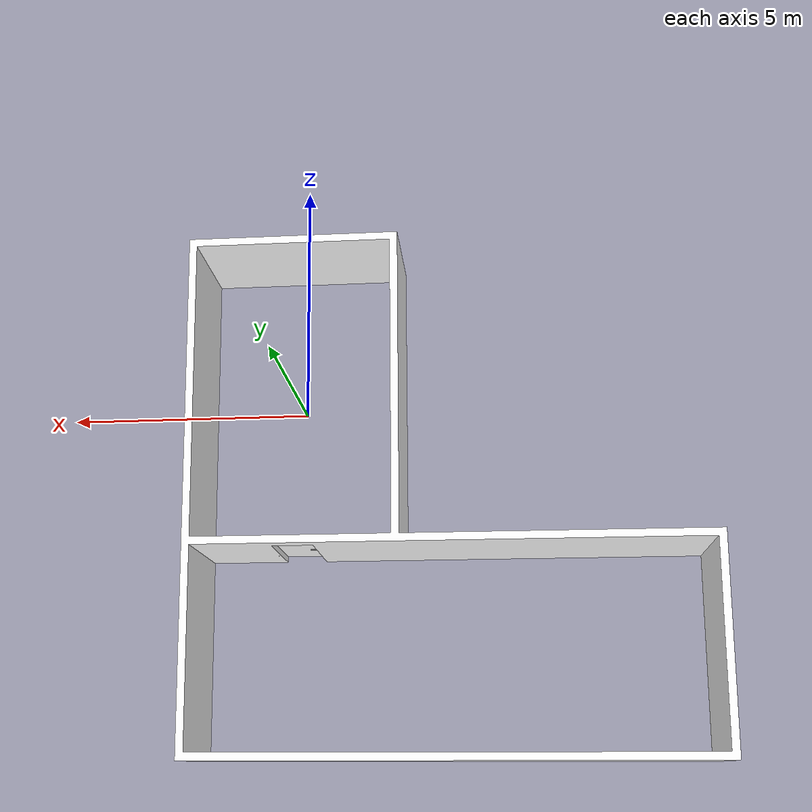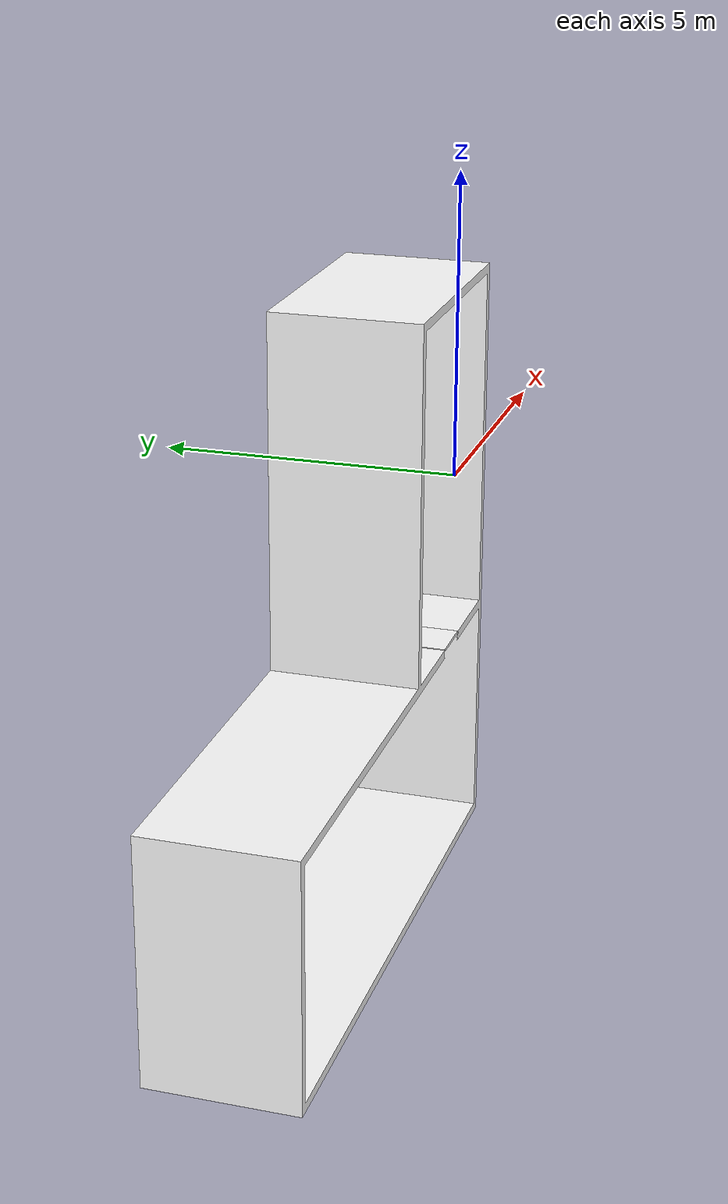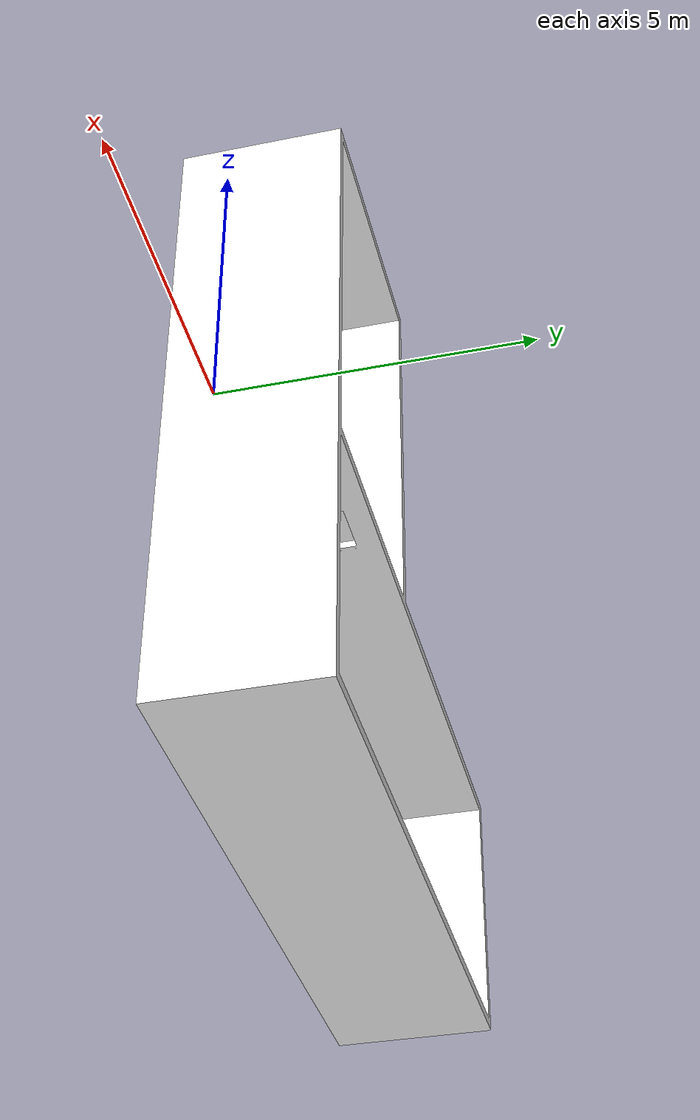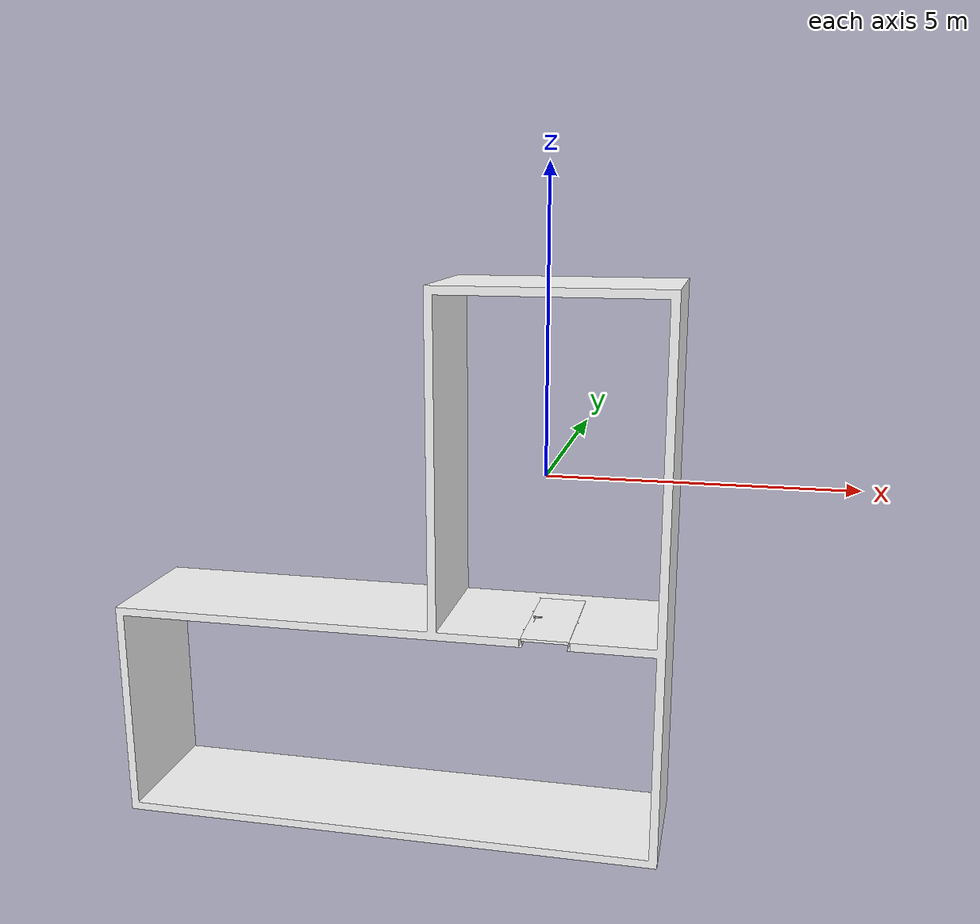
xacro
<?xml version="1.0" encoding="utf-8"?>
<robot xmlns:xacro="http://ros.org/wiki/xacro" name="room">
  <xacro:include filename="$(find innfos_control)/gazebo_control/models/room.gazebo.xacro"/>
  <link
    name="room_link">
    <inertial>
      <origin
        xyz="-1.94822112824507 1.25276651029596 -2.90723055226451"
        rpy="0 0 0" />
      <mass
        value="16168.5958343016" />
      <inertia
        ixx="192364.151188655"
        ixy="-86.9106786109994"
        ixz="-65926.2854752906"
        iyy="374286.87183972"
        iyz="4.13676432645725"
        izz="198812.779610138" />
    </inertial>
    <visual>
      <origin
        xyz="0 0 0"
        rpy="0 0 0" />
      <geometry>
        <mesh
          filename="package://innfos_control/gazebo_control/meshes/room_link.STL" />
      </geometry>
      <material
        name="">
        <color
          rgba="1 1 1 1" />
      </material>
    </visual>
    <collision>
      <origin
        xyz="0 0 0"
        rpy="0 0 0" />
      <geometry>
        <mesh
          filename="package://innfos_control/gazebo_control/meshes/room_link.STL" />
      </geometry>
    </collision>
  </link>
  <link
    name="door_link">
    <inertial>
      <origin
        xyz="-0.42652009925419 0.0173510276999185 -0.00416820084636216"
        rpy="0 0 0" />
      <mass
        value="0.001" />
      <inertia ixx="1.0" ixy="0.0" ixz="0.0" iyy="0.5" iyz="0.0" izz="1.0" />
    </inertial>
    <visual>
      <origin
        xyz="0 0 0"
        rpy="0 0 0" />
      <geometry>
        <mesh
          filename="package://innfos_control/gazebo_control/meshes/door_link.STL" />
      </geometry>
      <material
        name="">
        <color
          rgba="1 1 1 1" />
      </material>
    </visual>
    <collision>
      <origin
        xyz="0 0 0"
        rpy="0 0 0" />
      <geometry>
        <mesh
          filename="package://innfos_control/gazebo_control/meshes/door_link.STL" />
      </geometry>
    </collision>
  </link>
  <joint
    name="door_joint"
    type="revolute">
    <origin
      xyz="0.427 1.0825 -2.9185"
      rpy="-1.5708 0 0" />
    <parent
      link="room_link" />
    <child
      link="door_link" />
    <axis
      xyz="0 0 -1" />
    <limit
      lower="-3.14"
      upper="0"
      effort="0"
      velocity="0" />
    <dynamics damping="0.7"/>
  </joint>
  <link
    name="hand_link">
    <inertial>
      <origin
        xyz="-0.046192 0.0066095 -4.4409E-16"
        rpy="0 0 0" />
      <mass
        value="0.001" />
      <inertia
        ixx="0.00057069"
        ixy="4.0334E-05"
        ixz="-4.3071E-20"
        iyy="0.0010758"
        iyz="1.1399E-20"
        izz="0.00055815" />
    </inertial>
    <visual>
      <origin
        xyz="0 0 0"
        rpy="0 0 0" />
      <geometry>
        <mesh
          filename="package://innfos_control/gazebo_control/meshes/hand_link.STL" />
      </geometry>
      <material
        name="">
        <color
          rgba="0.752941176470588 0.752941176470588 0.752941176470588 1" />
      </material>
    </visual>
    <collision>
      <origin
        xyz="0 0 0"
        rpy="0 0 0" />
      <geometry>
        <mesh
          filename="package://innfos_control/gazebo_control/meshes/hand_link.STL" />
      </geometry>
    </collision>
  </link>
  <joint
    name="hand_joint"
    type="revolute">
    <origin
      xyz="-0.782 0.0175 -0.0425"
      rpy="1.5708 0 -3.1416" />
    <parent
      link="door_link" />
    <child
      link="hand_link" />
    <axis
      xyz="0 0 -1" />
    <dynamics
      friction = "1.0"
      damping="0.7" />
    <limit
      lower="-1"
      upper="0"
      effort="0"
      velocity="0" />
  </joint>
<xacro:room_gazebo />
</robot>
